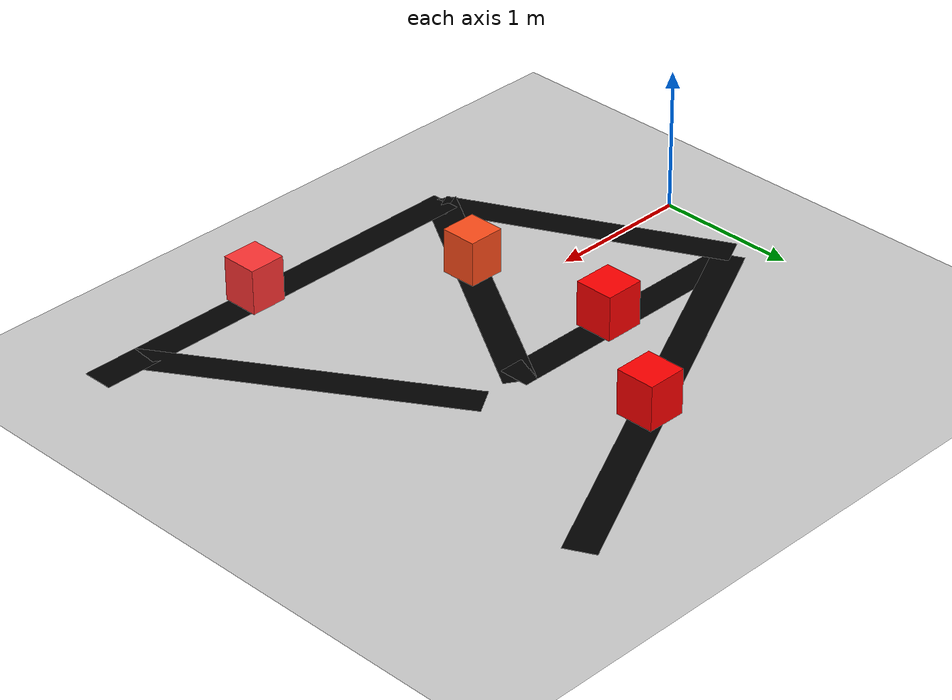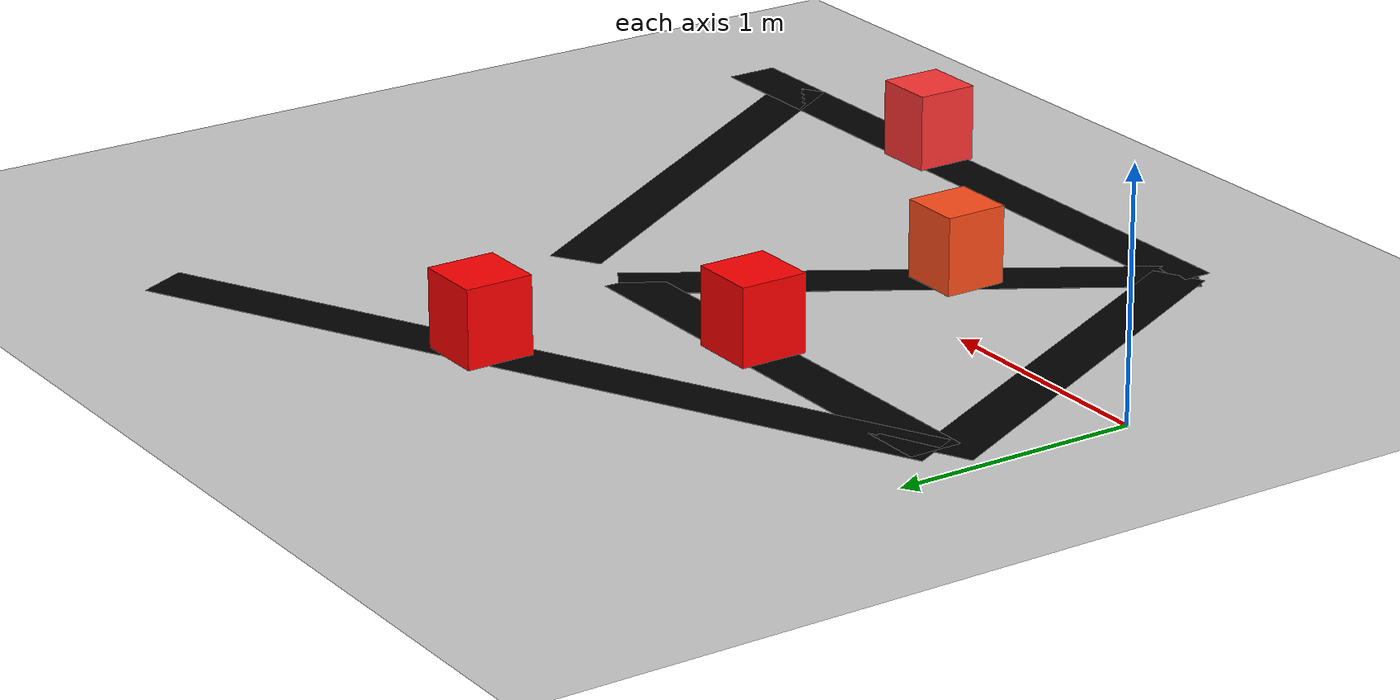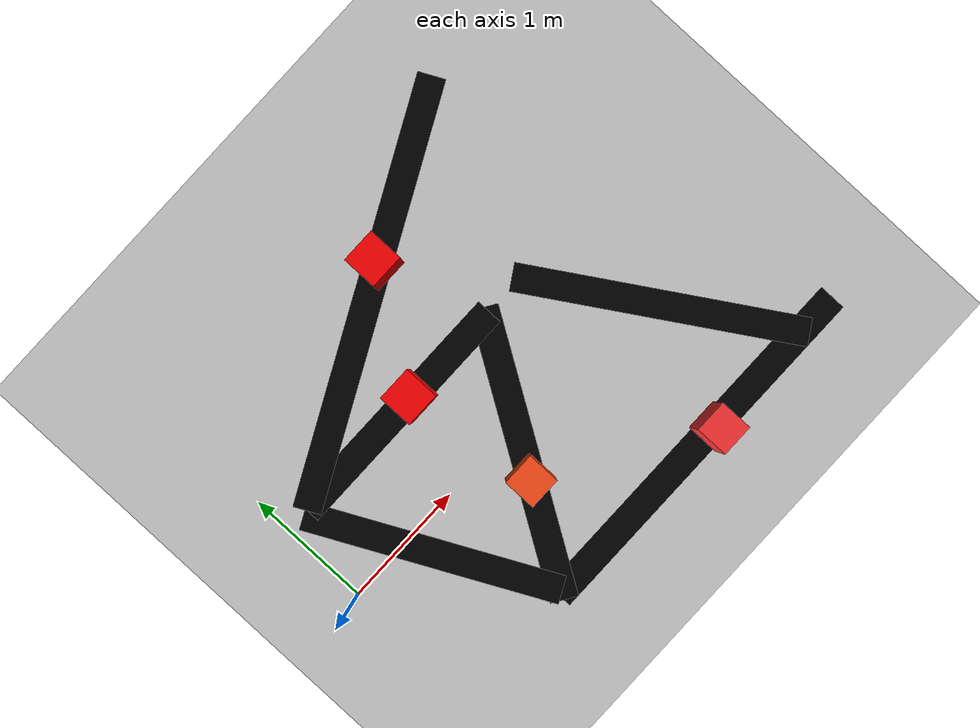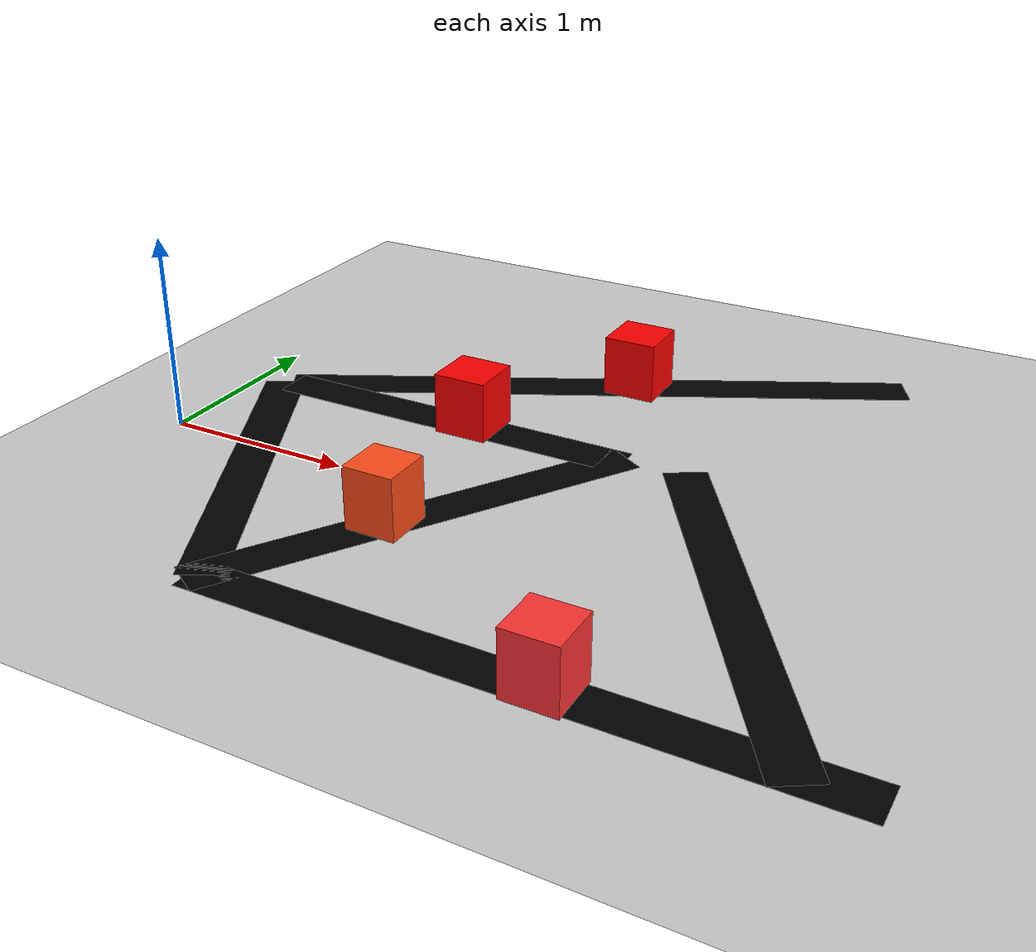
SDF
<?xml version="1.0" ?>
<sdf version="1.6">
  <world name="line_track_world">

    <physics type="ode">
      <max_step_size>0.001</max_step_size>
      <real_time_factor>1.0</real_time_factor>
      <real_time_update_rate>1000</real_time_update_rate>
      <ode>
        <solver>
          <type>quick</type>
          <iters>50</iters>
          <sor>1.3</sor>
        </solver>
      </ode>
    </physics>

    <light name="sun" type="directional">
      <cast_shadows>1</cast_shadows>
      <direction>0.5 0.5 -1</direction>
      <diffuse>0.8 0.8 0.8 1</diffuse>
      <specular>0.2 0.2 0.2 1</specular>
    </light>

    <model name="ground_plane">
      <static>true</static>
      <link name="link">
        <collision name="collision">
          <geometry>
            <plane>
              <normal>0 0 1</normal>
              <size>14 14</size>
            </plane>
          </geometry>
        </collision>
        <visual name="visual">
          <geometry>
            <plane>
              <normal>0 0 1</normal>
              <size>14 14</size>
            </plane>
          </geometry>
          <material>
            <script>
              <uri>file://media/materials/scripts/gazebo.material</uri>
              <name>Gazebo/Grey</name>
            </script>
          </material>
        </visual>
      </link>
    </model>

    <!-- Complex line network: nodes S(3.2,2.2), A(0.2,0.7), B(2.2,0.7), C(1.0,-1.1), D(4.0,-1.1) -->
    <model name="line_network">
      <static>true</static>
      <link name="line_link">

        <visual name="seg_sa">
          <pose>1.7 1.45 0.001 0 0 -2.678</pose>
          <geometry><box><size>3.36 0.22 0.001</size></box></geometry>
          <material><ambient>0 0 0 1</ambient><diffuse>0 0 0 1</diffuse></material>
        </visual>

        <visual name="seg_ab">
          <pose>1.2 0.7 0.001 0 0 0</pose>
          <geometry><box><size>2.0 0.22 0.001</size></box></geometry>
          <material><ambient>0 0 0 1</ambient><diffuse>0 0 0 1</diffuse></material>
        </visual>

        <visual name="seg_ac">
          <pose>0.6 -0.2 0.001 0 0 -1.107</pose>
          <geometry><box><size>2.0 0.22 0.001</size></box></geometry>
          <material><ambient>0 0 0 1</ambient><diffuse>0 0 0 1</diffuse></material>
        </visual>

        <visual name="seg_cb">
          <pose>1.6 -0.2 0.001 0 0 1.012</pose>
          <geometry><box><size>2.25 0.22 0.001</size></box></geometry>
          <material><ambient>0 0 0 1</ambient><diffuse>0 0 0 1</diffuse></material>
        </visual>

        <visual name="seg_bd">
          <pose>3.1 -0.2 0.001 0 0 -1.012</pose>
          <geometry><box><size>2.25 0.22 0.001</size></box></geometry>
          <material><ambient>0 0 0 1</ambient><diffuse>0 0 0 1</diffuse></material>
        </visual>

        <visual name="seg_cd">
          <pose>2.5 -1.1 0.001 0 0 0</pose>
          <geometry><box><size>3.0 0.22 0.001</size></box></geometry>
          <material><ambient>0 0 0 1</ambient><diffuse>0 0 0 1</diffuse></material>
        </visual>

      </link>
    </model>

    <!-- Obstacles on multiple branches -->
    <model name="obstacle_sa">
      <static>true</static>
      <pose>1.9 1.55 0.16 0 0 0</pose>
      <link name="link">
        <collision name="collision"><geometry><box><size>0.28 0.28 0.32</size></box></geometry></collision>
        <visual name="visual"><geometry><box><size>0.28 0.28 0.32</size></box></geometry><material><ambient>1 0 0 1</ambient><diffuse>1 0 0 1</diffuse></material></visual>
      </link>
    </model>

    <model name="obstacle_ab">
      <static>true</static>
      <pose>1.35 0.7 0.16 0 0 0</pose>
      <link name="link">
        <collision name="collision"><geometry><box><size>0.28 0.28 0.32</size></box></geometry></collision>
        <visual name="visual"><geometry><box><size>0.28 0.28 0.32</size></box></geometry><material><ambient>1 0 0 1</ambient><diffuse>1 0 0 1</diffuse></material></visual>
      </link>
    </model>

    <model name="obstacle_cb">
      <static>true</static>
      <pose>1.5 -0.35 0.16 0 0 0</pose>
      <link name="link">
        <collision name="collision"><geometry><box><size>0.26 0.26 0.32</size></box></geometry></collision>
        <visual name="visual"><geometry><box><size>0.26 0.26 0.32</size></box></geometry><material><ambient>1 0.3 0.1 1</ambient><diffuse>1 0.3 0.1 1</diffuse></material></visual>
      </link>
    </model>

    <model name="obstacle_cd">
      <static>true</static>
      <pose>2.7 -1.1 0.16 0 0 0</pose>
      <link name="link">
        <collision name="collision"><geometry><box><size>0.26 0.26 0.32</size></box></geometry></collision>
        <visual name="visual"><geometry><box><size>0.26 0.26 0.32</size></box></geometry><material><ambient>1 0.2 0.2 1</ambient><diffuse>1 0.2 0.2 1</diffuse></material></visual>
      </link>
    </model>

  </world>
</sdf>
